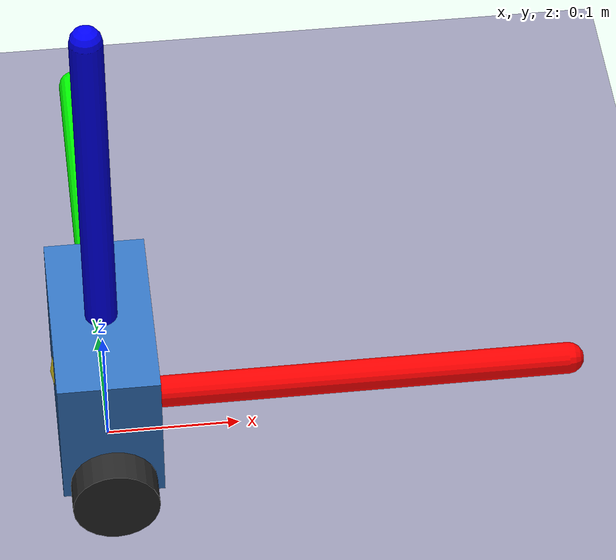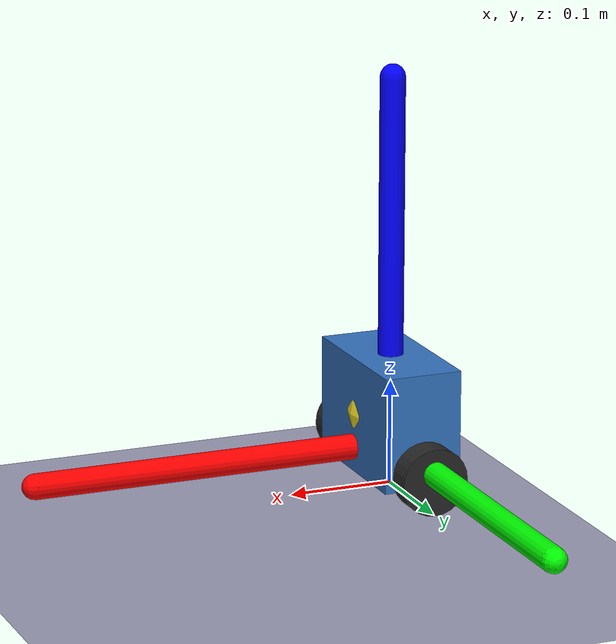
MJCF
<mujoco model="balance_bot">
  <compiler angle="radian" inertiafromgeom="true"/>
  <option gravity="0 0 -9.81" timestep="0.002" integrator="RK4"/>
  <default>
    <joint armature="0.01"/>
    <geom friction="1 0.1 0.1" condim="3" rgba="0.6 0.6 0.7 1"/>
    <motor ctrllimited="true" ctrlrange="-1 1"/>
  </default>
  <visual>
    <!-- Contact debug draw (when mjVIS_CONTACT* is enabled in the viewer). -->
    <scale contactwidth="0.015" contactheight="0.08" forcewidth="0.004"/>
    <rgba contactpoint="1 0.2 0.2 0.95" contactforce="1 0.55 0.1 0.9" contactfriction="0.2 0.8 1 0.85"/>
  </visual>
  <asset>
    <!-- Small skybox + matte floor (no reflectance) for lower GPU load -->
    <texture type="skybox" builtin="gradient" rgb1="0.4 0.5 0.65" rgb2="0.1 0.15 0.25" width="256" height="256"/>
    <texture builtin="checker" height="64" name="texplane" rgb1="0.15 0.25 0.55" rgb2="0.25 0.40 0.75" type="2d" width="64"/>
    <material name="MatPlane" reflectance="0" shininess="0.1" specular="0" texrepeat="40 40" texture="texplane"/>
  </asset>
  <worldbody>
    <light pos="0 0 3" dir="0 0 -1" diffuse="0.9 0.9 0.9"/>
    <geom name="floor" type="plane" size="3 3 0.1" material="MatPlane"/>
    <!-- World-frame axes at origin (RGB = XYZ). No collision — visual only. Gravity is -Z. -->
    <geom name="axis_x" type="capsule" size="0.012" fromto="0 0 0.04 0.35 0 0.04"
          rgba="1 0 0 0.9" contype="0" conaffinity="0"/>
    <geom name="axis_y" type="capsule" size="0.012" fromto="0 0 0.04 0 0.35 0.04"
          rgba="0 1 0 0.9" contype="0" conaffinity="0"/>
    <geom name="axis_z" type="capsule" size="0.012" fromto="0 0 0.04 0 0 0.39"
          rgba="0 0 1 0.9" contype="0" conaffinity="0"/>
    <!-- Cart slides on x; chassis pitches about y (wheel axle through left/right sides) -->
    <body name="cart" pos="0 0 0.03950000000000001">
      <joint name="slide" type="slide" axis="1 0 0" limited="true" range="-2.0 2.0"/>
      <geom name="axle_marker" type="sphere" size="0.015" rgba="0.3 0.3 0.3 1" mass="0.01"/>
      <!-- Wheels are rigidly attached to the axle/cart (they do NOT pitch with the chassis). -->
      <geom name="left_wheel" type="cylinder"
            size="0.032 0.0125"
            pos="0 -0.0925 -0.007500000000000007"
            quat="0.707107 0.707107 0 0"
            mass="0.024" rgba="0.15 0.15 0.15 1"/>
      <geom name="right_wheel" type="cylinder"
            size="0.032 0.0125"
            pos="0 0.0925 -0.007500000000000007"
            quat="0.707107 0.707107 0 0"
            mass="0.024" rgba="0.15 0.15 0.15 1"/>
      <body name="chassis">
        <joint name="hinge" type="hinge" axis="0 1 0"/>
        <!-- box: x=length, y=lateral, z=height; pos z = mass centre (battery-low bias) -->
        <geom name="body" type="box"
              size="0.0375 0.076 0.055"
              pos="0 0 0.032" mass="0.544" rgba="0.2 0.45 0.75 1"/>
        <!-- Measured chassis CoM (robot_params body_com_z); site does not add mass. -->
        <site name="body_cog" pos="0 0 0.032" size="0.04" rgba="1 0.92 0.15 1"/>
      </body>
    </body>
  </worldbody>
  <actuator>
    <!-- Ideal drive: mean(τ_l,τ_r) → target slide speed (m/s); high kv ≈ unlimited torque. -->
    <velocity joint="slide" name="slide_vel" kv="200.0"
              ctrllimited="true" ctrlrange="-1.0 1.0"/>
  </actuator>
</mujoco>
